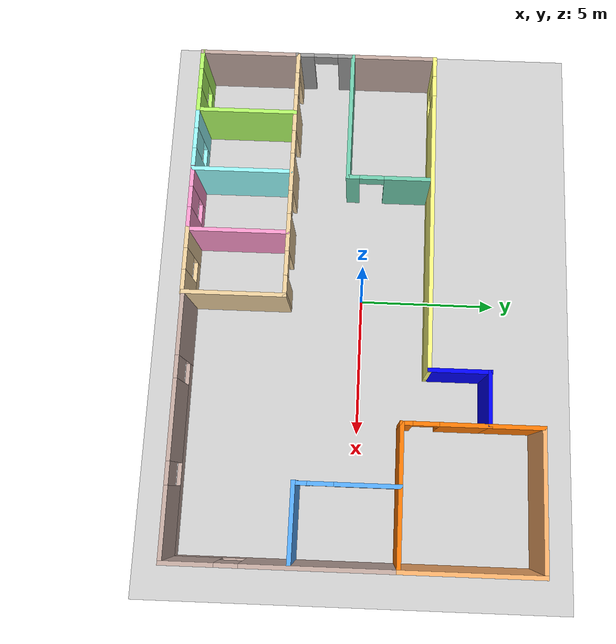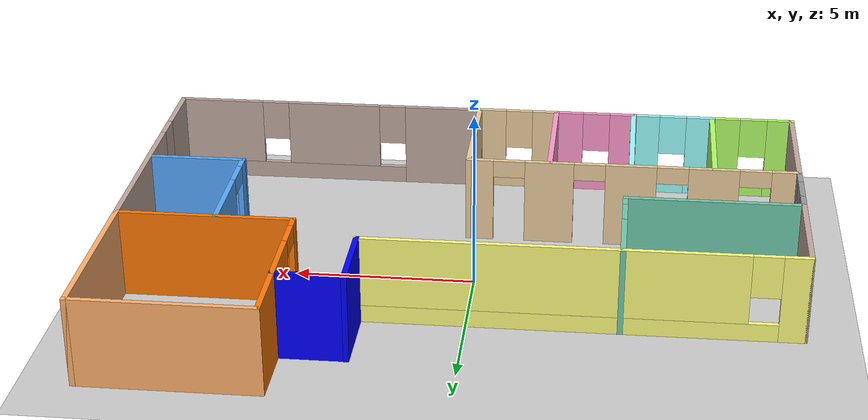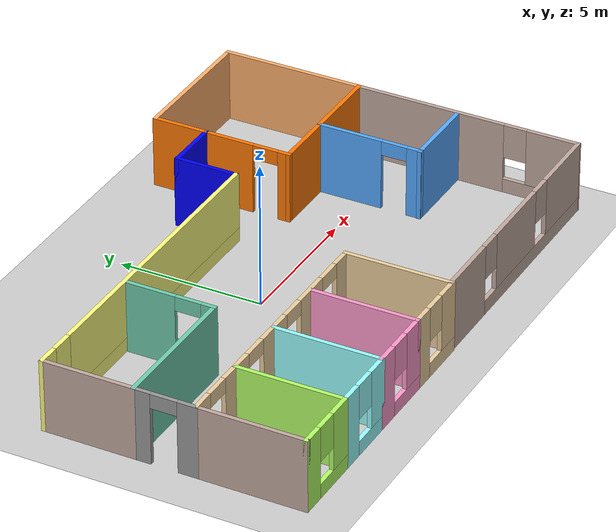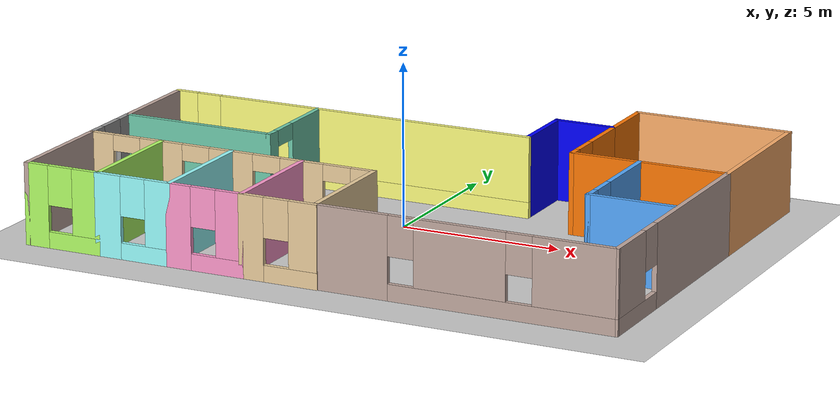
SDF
<sdf version="1.6">
 <world name="default">
  <model name="ground_plane">
   <static>1</static>
   <link name="link">
    <collision name="collision">
     <geometry><plane><normal>0 0 1</normal><size>100 100</size></plane></geometry>
     <surface><friction><ode><mu>100</mu><mu2>50</mu2></ode></friction></surface>
    </collision>
    <visual name="visual">
     <cast_shadows>0</cast_shadows>
     <geometry><plane><normal>0 0 1</normal><size>100 100</size></plane></geometry>
     <material>
      <script><uri>file://media/materials/scripts/gazebo.material</uri><name>Gazebo/Grey</name></script>
     </material>
    </visual>
   </link>
  </model>
  <model name="Building">
   <pose>0.30391 0.642742 0 0 -0 0</pose>
   <link name="Wall_0">
    <collision name="Wall_0_Collision">
     <geometry><box><size>5 0.15 2.5</size></box></geometry>
     <pose>0 0 1.25 0 -0 0</pose>
    </collision>
    <visual name="Wall_0_Visual">
     <pose>0 0 1.25 0 -0 0</pose>
     <geometry><box><size>5 0.15 2.5</size></box></geometry>
     <material>
      <script><uri>file://media/materials/scripts/gazebo.material</uri><name>Gazebo/Grey</name></script>
      <ambient>0.435294 0.796078 0.67451 1</ambient>
     </material>
     <meta><layer>0</layer></meta>
    </visual>
    <pose>-6.85008 -1.3 0 0 -0 0</pose>
   </link>
   <link name="Wall_1">
    <pose>-4.42508 0.25 0 0 -0 1.5708</pose>
    <visual name="Wall_1_Visual_0">
     <pose>-1.37584 0 1.25 0 -0 0</pose>
     <geometry><box><size>0.498315 0.15 2.5</size></box></geometry>
     <material>
      <script><uri>file://media/materials/scripts/gazebo.material</uri><name>Gazebo/Grey</name></script>
      <ambient>0.435294 0.796078 0.67451 1</ambient>
     </material>
     <meta><layer>0</layer></meta>
    </visual>
    <collision name="Wall_1_Collision_0">
     <geometry><box><size>0.498315 0.15 2.5</size></box></geometry>
     <pose>-1.37584 0 1.25 0 -0 0</pose>
    </collision>
    <visual name="Wall_1_Visual_1">
     <pose>0.699158 0 1.25 0 -0 0</pose>
     <geometry><box><size>1.85169 0.15 2.5</size></box></geometry>
     <material>
      <script><uri>file://media/materials/scripts/gazebo.material</uri><name>Gazebo/Grey</name></script>
      <ambient>0.435294 0.796078 0.67451 1</ambient>
     </material>
     <meta><layer>0</layer></meta>
    </visual>
    <collision name="Wall_1_Collision_1">
     <geometry><box><size>1.85169 0.15 2.5</size></box></geometry>
     <pose>0.699158 0 1.25 0 -0 0</pose>
    </collision>
    <visual name="Wall_1_Visual_2">
     <pose>-0.676685 0 2.25 0 -0 0</pose>
     <geometry><box><size>0.9 0.15 0.5</size></box></geometry>
     <material>
      <script><uri>file://media/materials/scripts/gazebo.material</uri><name>Gazebo/Grey</name></script>
      <ambient>0.435294 0.796078 0.67451 1</ambient>
     </material>
     <meta><layer>0</layer></meta>
    </visual>
    <collision name="Wall_1_Collision_2">
     <geometry><box><size>0.9 0.15 0.5</size></box></geometry>
     <pose>-0.676685 0 2.25 0 -0 0</pose>
    </collision>
   </link>
   <link name="Wall_10">
    <pose>-3.40008 -7 0 0 -0 0</pose>
    <visual name="Wall_10_Visual_0">
     <pose>-0.845921 0 1.25 0 -0 0</pose>
     <geometry><box><size>0.808158 0.15 2.5</size></box></geometry>
     <material>
      <script><uri>file://media/materials/scripts/gazebo.material</uri><name>Gazebo/Grey</name></script>
      <ambient>1 0.6 0.8 1</ambient>
     </material>
     <meta><layer>0</layer></meta>
    </visual>
    <collision name="Wall_10_Collision_0">
     <geometry><box><size>0.808158 0.15 2.5</size></box></geometry>
     <pose>-0.845921 0 1.25 0 -0 0</pose>
    </collision>
    <visual name="Wall_10_Visual_1">
     <pose>0.404079 0 0.25 0 -0 0</pose>
     <geometry><box><size>1.69184 0.15 0.5</size></box></geometry>
     <material>
      <script><uri>file://media/materials/scripts/gazebo.material</uri><name>Gazebo/Grey</name></script>
      <ambient>1 0.6 0.8 1</ambient>
     </material>
     <meta><layer>0</layer></meta>
    </visual>
    <collision name="Wall_10_Collision_1">
     <geometry><box><size>1.69184 0.15 0.5</size></box></geometry>
     <pose>0.404079 0 0.25 0 -0 0</pose>
    </collision>
    <visual name="Wall_10_Visual_2">
     <pose>0.804079 0 1.5 0 -0 0</pose>
     <geometry><box><size>0.891842 0.15 2</size></box></geometry>
     <material>
      <script><uri>file://media/materials/scripts/gazebo.material</uri><name>Gazebo/Grey</name></script>
      <ambient>1 0.6 0.8 1</ambient>
     </material>
     <meta><layer>0</layer></meta>
    </visual>
    <collision name="Wall_10_Collision_2">
     <geometry><box><size>0.891842 0.15 2</size></box></geometry>
     <pose>0.804079 0 1.5 0 -0 0</pose>
    </collision>
    <visual name="Wall_10_Visual_3">
     <pose>-0.041842 0 1.9 0 -0 0</pose>
     <geometry><box><size>0.8 0.15 1.2</size></box></geometry>
     <material>
      <script><uri>file://media/materials/scripts/gazebo.material</uri><name>Gazebo/Grey</name></script>
      <ambient>1 0.6 0.8 1</ambient>
     </material>
     <meta><layer>0</layer></meta>
    </visual>
    <collision name="Wall_10_Collision_3">
     <geometry><box><size>0.8 0.15 1.2</size></box></geometry>
     <pose>-0.041842 0 1.9 0 -0 0</pose>
    </collision>
   </link>
   <link name="Wall_11">
    <pose>-1.05008 -7 0 0 -0 0</pose>
    <visual name="Wall_11_Visual_0">
     <pose>-0.851227 0 1.25 0 -0 0</pose>
     <geometry><box><size>0.797546 0.15 2.5</size></box></geometry>
     <material>
      <script><uri>file://media/materials/scripts/gazebo.material</uri><name>Gazebo/Grey</name></script>
      <ambient>0.921569 0.807843 0.615686 1</ambient>
     </material>
     <meta><layer>0</layer></meta>
    </visual>
    <collision name="Wall_11_Collision_0">
     <geometry><box><size>0.797546 0.15 2.5</size></box></geometry>
     <pose>-0.851227 0 1.25 0 -0 0</pose>
    </collision>
    <visual name="Wall_11_Visual_1">
     <pose>0.398773 0 0.25 0 -0 0</pose>
     <geometry><box><size>1.70245 0.15 0.5</size></box></geometry>
     <material>
      <script><uri>file://media/materials/scripts/gazebo.material</uri><name>Gazebo/Grey</name></script>
      <ambient>0.921569 0.807843 0.615686 1</ambient>
     </material>
     <meta><layer>0</layer></meta>
    </visual>
    <collision name="Wall_11_Collision_1">
     <geometry><box><size>1.70245 0.15 0.5</size></box></geometry>
     <pose>0.398773 0 0.25 0 -0 0</pose>
    </collision>
    <visual name="Wall_11_Visual_2">
     <pose>0.798773 0 1.5 0 -0 0</pose>
     <geometry><box><size>0.902454 0.15 2</size></box></geometry>
     <material>
      <script><uri>file://media/materials/scripts/gazebo.material</uri><name>Gazebo/Grey</name></script>
      <ambient>0.921569 0.807843 0.615686 1</ambient>
     </material>
     <meta><layer>0</layer></meta>
    </visual>
    <collision name="Wall_11_Collision_2">
     <geometry><box><size>0.902454 0.15 2</size></box></geometry>
     <pose>0.798773 0 1.5 0 -0 0</pose>
    </collision>
    <visual name="Wall_11_Visual_3">
     <pose>-0.052454 0 1.9 0 -0 0</pose>
     <geometry><box><size>0.8 0.15 1.2</size></box></geometry>
     <material>
      <script><uri>file://media/materials/scripts/gazebo.material</uri><name>Gazebo/Grey</name></script>
      <ambient>0.921569 0.807843 0.615686 1</ambient>
     </material>
     <meta><layer>0</layer></meta>
    </visual>
    <collision name="Wall_11_Collision_3">
     <geometry><box><size>0.8 0.15 1.2</size></box></geometry>
     <pose>-0.052454 0 1.9 0 -0 0</pose>
    </collision>
   </link>
   <link name="Wall_13">
    <collision name="Wall_13_Collision">
     <geometry><box><size>3.75 0.15 2.5</size></box></geometry>
     <pose>0 0 1.25 0 -0 0</pose>
    </collision>
    <visual name="Wall_13_Visual">
     <pose>0 0 1.25 0 -0 0</pose>
     <geometry><box><size>3.75 0.15 2.5</size></box></geometry>
     <material>
      <script><uri>file://media/materials/scripts/gazebo.material</uri><name>Gazebo/Grey</name></script>
      <ambient>0.7 1 0.4 1</ambient>
     </material>
     <meta><layer>0</layer></meta>
    </visual>
    <pose>-6.90893 -5.18287 0 0 0 -1.5708</pose>
   </link>
   <link name="Wall_15">
    <collision name="Wall_15_Collision">
     <geometry><box><size>3.75 0.15 2.5</size></box></geometry>
     <pose>0 0 1.25 0 -0 0</pose>
    </collision>
    <visual name="Wall_15_Visual">
     <pose>0 0 1.25 0 -0 0</pose>
     <geometry><box><size>3.75 0.15 2.5</size></box></geometry>
     <material>
      <script><uri>file://media/materials/scripts/gazebo.material</uri><name>Gazebo/Grey</name></script>
      <ambient>0.6 1 1 1</ambient>
     </material>
     <meta><layer>0</layer></meta>
    </visual>
    <pose>-4.55349 -5.19817 0 0 0 -1.5708</pose>
   </link>
   <link name="Wall_20">
    <collision name="Wall_20_Collision">
     <geometry><box><size>3.75 0.15 2.5</size></box></geometry>
     <pose>0 0 1.25 0 -0 0</pose>
    </collision>
    <visual name="Wall_20_Visual">
     <pose>0 0 1.25 0 -0 0</pose>
     <geometry><box><size>3.75 0.15 2.5</size></box></geometry>
     <material>
      <script><uri>file://media/materials/scripts/gazebo.material</uri><name>Gazebo/Grey</name></script>
      <ambient>0.921569 0.807843 0.615686 1</ambient>
     </material>
     <meta><layer>0</layer></meta>
    </visual>
    <pose>0.105511 -5.16941 0 0 0 -1.5708</pose>
   </link>
   <link name="Wall_22">
    <pose>-4.56949 -3.36941 0 0 -0 3.14159</pose>
    <visual name="Wall_22_Visual_0">
     <pose>-4.35107 0 1.25 0 -0 0</pose>
     <geometry><box><size>0.797866 0.15 2.5</size></box></geometry>
     <material>
      <script><uri>file://media/materials/scripts/gazebo.material</uri><name>Gazebo/Grey</name></script>
      <ambient>0.921569 0.807843 0.615686 1</ambient>
     </material>
     <meta><layer>0</layer></meta>
    </visual>
    <collision name="Wall_22_Collision_0">
     <geometry><box><size>0.797866 0.15 2.5</size></box></geometry>
     <pose>-4.35107 0 1.25 0 -0 0</pose>
    </collision>
    <visual name="Wall_22_Visual_1">
     <pose>-2.35003 0 1.25 0 -0 0</pose>
     <geometry><box><size>1.40421 0.15 2.5</size></box></geometry>
     <material>
      <script><uri>file://media/materials/scripts/gazebo.material</uri><name>Gazebo/Grey</name></script>
      <ambient>0.921569 0.807843 0.615686 1</ambient>
     </material>
     <meta><layer>0</layer></meta>
    </visual>
    <collision name="Wall_22_Collision_1">
     <geometry><box><size>1.40421 0.15 2.5</size></box></geometry>
     <pose>-2.35003 0 1.25 0 -0 0</pose>
    </collision>
    <visual name="Wall_22_Visual_2">
     <pose>-0.019437 0 1.25 0 -0 0</pose>
     <geometry><box><size>1.45698 0.15 2.5</size></box></geometry>
     <material>
      <script><uri>file://media/materials/scripts/gazebo.material</uri><name>Gazebo/Grey</name></script>
      <ambient>0.921569 0.807843 0.615686 1</ambient>
     </material>
     <meta><layer>0</layer></meta>
    </visual>
    <collision name="Wall_22_Collision_2">
     <geometry><box><size>1.45698 0.15 2.5</size></box></geometry>
     <pose>-0.019437 0 1.25 0 -0 0</pose>
    </collision>
    <visual name="Wall_22_Visual_3">
     <pose>2.32875 0 1.25 0 -0 0</pose>
     <geometry><box><size>1.43939 0.15 2.5</size></box></geometry>
     <material>
      <script><uri>file://media/materials/scripts/gazebo.material</uri><name>Gazebo/Grey</name></script>
      <ambient>0.921569 0.807843 0.615686 1</ambient>
     </material>
     <meta><layer>0</layer></meta>
    </visual>
    <collision name="Wall_22_Collision_3">
     <geometry><box><size>1.43939 0.15 2.5</size></box></geometry>
     <pose>2.32875 0 1.25 0 -0 0</pose>
    </collision>
    <visual name="Wall_22_Visual_4">
     <pose>4.34922 0 1.25 0 -0 0</pose>
     <geometry><box><size>0.801561 0.15 2.5</size></box></geometry>
     <material>
      <script><uri>file://media/materials/scripts/gazebo.material</uri><name>Gazebo/Grey</name></script>
      <ambient>0.921569 0.807843 0.615686 1</ambient>
     </material>
     <meta><layer>0</layer></meta>
    </visual>
    <collision name="Wall_22_Collision_4">
     <geometry><box><size>0.801561 0.15 2.5</size></box></geometry>
     <pose>4.34922 0 1.25 0 -0 0</pose>
    </collision>
    <visual name="Wall_22_Visual_5">
     <pose>-3.50213 0 2.25 0 -0 0</pose>
     <geometry><box><size>0.9 0.15 0.5</size></box></geometry>
     <material>
      <script><uri>file://media/materials/scripts/gazebo.material</uri><name>Gazebo/Grey</name></script>
      <ambient>0.921569 0.807843 0.615686 1</ambient>
     </material>
     <meta><layer>0</layer></meta>
    </visual>
    <collision name="Wall_22_Collision_5">
     <geometry><box><size>0.9 0.15 0.5</size></box></geometry>
     <pose>-3.50213 0 2.25 0 -0 0</pose>
    </collision>
    <visual name="Wall_22_Visual_6">
     <pose>-1.19792 0 2.25 0 -0 0</pose>
     <geometry><box><size>0.9 0.15 0.5</size></box></geometry>
     <material>
      <script><uri>file://media/materials/scripts/gazebo.material</uri><name>Gazebo/Grey</name></script>
      <ambient>0.921569 0.807843 0.615686 1</ambient>
     </material>
     <meta><layer>0</layer></meta>
    </visual>
    <collision name="Wall_22_Collision_6">
     <geometry><box><size>0.9 0.15 0.5</size></box></geometry>
     <pose>-1.19792 0 2.25 0 -0 0</pose>
    </collision>
    <visual name="Wall_22_Visual_7">
     <pose>1.15905 0 2.25 0 -0 0</pose>
     <geometry><box><size>0.9 0.15 0.5</size></box></geometry>
     <material>
      <script><uri>file://media/materials/scripts/gazebo.material</uri><name>Gazebo/Grey</name></script>
      <ambient>0.921569 0.807843 0.615686 1</ambient>
     </material>
     <meta><layer>0</layer></meta>
    </visual>
    <collision name="Wall_22_Collision_7">
     <geometry><box><size>0.9 0.15 0.5</size></box></geometry>
     <pose>1.15905 0 2.25 0 -0 0</pose>
    </collision>
    <visual name="Wall_22_Visual_8">
     <pose>3.49844 0 2.25 0 -0 0</pose>
     <geometry><box><size>0.9 0.15 0.5</size></box></geometry>
     <material>
      <script><uri>file://media/materials/scripts/gazebo.material</uri><name>Gazebo/Grey</name></script>
      <ambient>0.921569 0.807843 0.615686 1</ambient>
     </material>
     <meta><layer>0</layer></meta>
    </visual>
    <collision name="Wall_22_Collision_8">
     <geometry><box><size>0.9 0.15 0.5</size></box></geometry>
     <pose>3.49844 0 2.25 0 -0 0</pose>
    </collision>
   </link>
   <link name="Wall_24">
    <collision name="Wall_24_Collision">
     <geometry><box><size>3.75 0.15 2.5</size></box></geometry>
     <pose>0 0 1.25 0 -0 0</pose>
    </collision>
    <visual name="Wall_24_Visual">
     <pose>0 0 1.25 0 -0 0</pose>
     <geometry><box><size>3.75 0.15 2.5</size></box></geometry>
     <material>
      <script><uri>file://media/materials/scripts/gazebo.material</uri><name>Gazebo/Grey</name></script>
      <ambient>1 0.6 0.8 1</ambient>
     </material>
     <meta><layer>0</layer></meta>
    </visual>
    <pose>-2.22508 -5.2 0 0 -0 1.5708</pose>
   </link>
   <link name="Wall_27">
    <pose>-3.35008 1.8 0 0 -0 0</pose>
    <visual name="Wall_27_Visual_0">
     <pose>-5.61169 0 1.25 0 -0 0</pose>
     <geometry><box><size>0.776615 0.15 2.5</size></box></geometry>
     <material>
      <script><uri>file://media/materials/scripts/gazebo.material</uri><name>Gazebo/Grey</name></script>
      <ambient>1 1 0.498039 1</ambient>
     </material>
     <meta><layer>0</layer></meta>
    </visual>
    <collision name="Wall_27_Collision_0">
     <geometry><box><size>0.776615 0.15 2.5</size></box></geometry>
     <pose>-5.61169 0 1.25 0 -0 0</pose>
    </collision>
    <visual name="Wall_27_Visual_1">
     <pose>0.388307 0 0.25 0 -0 0</pose>
     <geometry><box><size>11.2234 0.15 0.5</size></box></geometry>
     <material>
      <script><uri>file://media/materials/scripts/gazebo.material</uri><name>Gazebo/Grey</name></script>
      <ambient>1 1 0.498039 1</ambient>
     </material>
     <meta><layer>0</layer></meta>
    </visual>
    <collision name="Wall_27_Collision_1">
     <geometry><box><size>11.2234 0.15 0.5</size></box></geometry>
     <pose>0.388307 0 0.25 0 -0 0</pose>
    </collision>
    <visual name="Wall_27_Visual_2">
     <pose>0.788307 0 1.5 0 -0 0</pose>
     <geometry><box><size>10.4234 0.15 2</size></box></geometry>
     <material>
      <script><uri>file://media/materials/scripts/gazebo.material</uri><name>Gazebo/Grey</name></script>
      <ambient>1 1 0.498039 1</ambient>
     </material>
     <meta><layer>0</layer></meta>
    </visual>
    <collision name="Wall_27_Collision_2">
     <geometry><box><size>10.4234 0.15 2</size></box></geometry>
     <pose>0.788307 0 1.5 0 -0 0</pose>
    </collision>
    <visual name="Wall_27_Visual_3">
     <pose>-4.82339 0 1.9 0 -0 0</pose>
     <geometry><box><size>0.8 0.15 1.2</size></box></geometry>
     <material>
      <script><uri>file://media/materials/scripts/gazebo.material</uri><name>Gazebo/Grey</name></script>
      <ambient>1 1 0.498039 1</ambient>
     </material>
     <meta><layer>0</layer></meta>
    </visual>
    <collision name="Wall_27_Collision_3">
     <geometry><box><size>0.8 0.15 1.2</size></box></geometry>
     <pose>-4.82339 0 1.9 0 -0 0</pose>
    </collision>
   </link>
   <link name="Wall_29">
    <pose>2.57492 2.85 0 0 -0 1.5708</pose>
    <visual name="Wall_29_Visual">
     <pose>0.01253 0 1.25 0 -0 0</pose>
     <geometry><box><size>2.25 0.15 2.5</size></box></geometry>
     <material>
      <script><uri>file://media/materials/scripts/gazebo.material</uri><name>Gazebo/Grey</name></script>
      <ambient>0 0 1 1</ambient>
     </material>
     <meta><layer>0</layer></meta>
    </visual>
    <collision name="Wall_29_Collision">
     <geometry><box><size>2.25 0.15 2.5</size></box></geometry>
     <pose>0.01253 0 1.25 0 -0 0</pose>
    </collision>
   </link>
   <link name="Wall_3">
    <collision name="Wall_3_Collision">
     <geometry><box><size>3.25 0.15 2.5</size></box></geometry>
     <pose>0 0 1.25 0 -0 0</pose>
    </collision>
    <visual name="Wall_3_Visual">
     <pose>0 0 1.25 0 -0 0</pose>
     <geometry><box><size>3.25 0.15 2.5</size></box></geometry>
     <material>
      <script><uri>file://media/materials/scripts/gazebo.material</uri><name>Gazebo/Grey</name></script>
      <ambient>0.760784 0.662745 0.627451 1</ambient>
     </material>
     <meta><layer>0</layer></meta>
    </visual>
    <pose>-9.27508 0.25 0 0 0 -1.5708</pose>
   </link>
   <link name="Wall_39">
    <collision name="Wall_39_Collision">
     <geometry><box><size>2 0.15 2.5</size></box></geometry>
     <pose>0 0 1.25 0 -0 0</pose>
    </collision>
    <visual name="Wall_39_Visual">
     <pose>0 0 1.25 0 -0 0</pose>
     <geometry><box><size>2 0.15 2.5</size></box></geometry>
     <material>
      <script><uri>file://media/materials/scripts/gazebo.material</uri><name>Gazebo/Grey</name></script>
      <ambient>0 0 1 1</ambient>
     </material>
     <meta><layer>0</layer></meta>
    </visual>
    <pose>3.49992 3.9 0 0 -0 0</pose>
   </link>
   <link name="Wall_40">
    <collision name="Wall_40_Collision">
     <geometry><box><size>2 0.15 2.5</size></box></geometry>
     <pose>0 0 1.25 0 -0 0</pose>
    </collision>
    <visual name="Wall_40_Visual">
     <pose>0 0 1.25 0 -0 0</pose>
     <geometry><box><size>2 0.15 2.5</size></box></geometry>
     <material>
      <script><uri>file://media/materials/scripts/gazebo.material</uri><name>Gazebo/Grey</name></script>
      <ambient>0.996078 0.47451 0.0196078 1</ambient>
     </material>
     <meta><layer>0</layer></meta>
    </visual>
    <pose>4.42492 4.825 0 0 -0 1.5708</pose>
   </link>
   <link name="Wall_42">
    <collision name="Wall_42_Collision">
     <geometry><box><size>5 0.15 2.5</size></box></geometry>
     <pose>0 0 1.25 0 -0 0</pose>
    </collision>
    <visual name="Wall_42_Visual">
     <pose>0 0 1.25 0 -0 0</pose>
     <geometry><box><size>5 0.15 2.5</size></box></geometry>
     <material>
      <script><uri>file://media/materials/scripts/gazebo.material</uri><name>Gazebo/Grey</name></script>
      <ambient>1 0.69 0.42 1</ambient>
     </material>
     <meta><layer>0</layer></meta>
    </visual>
    <pose>6.84992 5.75 0 0 -0 0</pose>
   </link>
   <link name="Wall_47">
    <collision name="Wall_47_Collision">
     <geometry><box><size>5 0.15 2.5</size></box></geometry>
     <pose>0 0 1.25 0 -0 0</pose>
    </collision>
    <visual name="Wall_47_Visual">
     <pose>0 0 1.25 0 -0 0</pose>
     <geometry><box><size>5 0.15 2.5</size></box></geometry>
     <material>
      <script><uri>file://media/materials/scripts/gazebo.material</uri><name>Gazebo/Grey</name></script>
      <ambient>1 0.69 0.42 1</ambient>
     </material>
     <meta><layer>0</layer></meta>
    </visual>
    <pose>9.27492 3.325 0 0 0 -1.5708</pose>
   </link>
   <link name="Wall_48">
    <collision name="Wall_48_Collision">
     <geometry><box><size>5 0.15 2.5</size></box></geometry>
     <pose>0 0 1.25 0 -0 0</pose>
    </collision>
    <visual name="Wall_48_Visual">
     <pose>0 0 1.25 0 -0 0</pose>
     <geometry><box><size>5 0.15 2.5</size></box></geometry>
     <material>
      <script><uri>file://media/materials/scripts/gazebo.material</uri><name>Gazebo/Grey</name></script>
      <ambient>0.996078 0.47451 0.0196078 1</ambient>
     </material>
     <meta><layer>0</layer></meta>
    </visual>
    <pose>6.84992 0.9 0 0 -0 3.14159</pose>
   </link>
   <link name="Wall_5">
    <pose>-9.27508 -2.35 0 0 0 -1.5708</pose>
    <visual name="Wall_5_Visual_0">
     <pose>-0.799331 0 1.25 0 -0 0</pose>
     <geometry><box><size>0.651337 0.15 2.5</size></box></geometry>
     <material>
      <script><uri>file://media/materials/scripts/gazebo.material</uri><name>Gazebo/Grey</name></script>
      <ambient>1 1 1 1</ambient>
     </material>
     <meta><layer>0</layer></meta>
    </visual>
    <collision name="Wall_5_Collision_0">
     <geometry><box><size>0.651337 0.15 2.5</size></box></geometry>
     <pose>-0.799331 0 1.25 0 -0 0</pose>
    </collision>
    <visual name="Wall_5_Visual_1">
     <pose>0.775669 0 1.25 0 -0 0</pose>
     <geometry><box><size>0.698663 0.15 2.5</size></box></geometry>
     <material>
      <script><uri>file://media/materials/scripts/gazebo.material</uri><name>Gazebo/Grey</name></script>
      <ambient>1 1 1 1</ambient>
     </material>
     <meta><layer>0</layer></meta>
    </visual>
    <collision name="Wall_5_Collision_1">
     <geometry><box><size>0.698663 0.15 2.5</size></box></geometry>
     <pose>0.775669 0 1.25 0 -0 0</pose>
    </collision>
    <visual name="Wall_5_Visual_2">
     <pose>-0.023663 0 2.25 0 -0 0</pose>
     <geometry><box><size>0.9 0.15 0.5</size></box></geometry>
     <material>
      <script><uri>file://media/materials/scripts/gazebo.material</uri><name>Gazebo/Grey</name></script>
      <ambient>1 1 1 1</ambient>
     </material>
     <meta><layer>0</layer></meta>
    </visual>
    <collision name="Wall_5_Collision_2">
     <geometry><box><size>0.9 0.15 0.5</size></box></geometry>
     <pose>-0.023663 0 2.25 0 -0 0</pose>
    </collision>
   </link>
   <link name="Wall_50">
    <pose>4.42492 2.4 0 0 -0 1.5708</pose>
    <visual name="Wall_50_Visual_0">
     <pose>-1.35289 0 1.25 0 -0 0</pose>
     <geometry><box><size>0.44422 0.15 2.5</size></box></geometry>
     <material>
      <script><uri>file://media/materials/scripts/gazebo.material</uri><name>Gazebo/Grey</name></script>
      <ambient>0.996078 0.47451 0.0196078 1</ambient>
     </material>
     <meta><layer>0</layer></meta>
    </visual>
    <collision name="Wall_50_Collision_0">
     <geometry><box><size>0.44422 0.15 2.5</size></box></geometry>
     <pose>-1.35289 0 1.25 0 -0 0</pose>
    </collision>
    <visual name="Wall_50_Visual_1">
     <pose>0.67211 0 1.25 0 -0 0</pose>
     <geometry><box><size>1.80578 0.15 2.5</size></box></geometry>
     <material>
      <script><uri>file://media/materials/scripts/gazebo.material</uri><name>Gazebo/Grey</name></script>
      <ambient>0.996078 0.47451 0.0196078 1</ambient>
     </material>
     <meta><layer>0</layer></meta>
    </visual>
    <collision name="Wall_50_Collision_1">
     <geometry><box><size>1.80578 0.15 2.5</size></box></geometry>
     <pose>0.67211 0 1.25 0 -0 0</pose>
    </collision>
    <visual name="Wall_50_Visual_2">
     <pose>-0.68078 0 2.25 0 -0 0</pose>
     <geometry><box><size>0.9 0.15 0.5</size></box></geometry>
     <material>
      <script><uri>file://media/materials/scripts/gazebo.material</uri><name>Gazebo/Grey</name></script>
      <ambient>0.996078 0.47451 0.0196078 1</ambient>
     </material>
     <meta><layer>0</layer></meta>
    </visual>
    <collision name="Wall_50_Collision_2">
     <geometry><box><size>0.9 0.15 0.5</size></box></geometry>
     <pose>-0.68078 0 2.25 0 -0 0</pose>
    </collision>
   </link>
   <link name="Wall_52">
    <pose>9.27492 -3.025 0 0 0 -1.5708</pose>
    <visual name="Wall_52_Visual_0">
     <pose>-1.32687 0 1.25 0 -0 0</pose>
     <geometry><box><size>5.34626 0.15 2.5</size></box></geometry>
     <material>
      <script><uri>file://media/materials/scripts/gazebo.material</uri><name>Gazebo/Grey</name></script>
      <ambient>0.760784 0.662745 0.627451 1</ambient>
     </material>
     <meta><layer>0</layer></meta>
    </visual>
    <collision name="Wall_52_Collision_0">
     <geometry><box><size>5.34626 0.15 2.5</size></box></geometry>
     <pose>-1.32687 0 1.25 0 -0 0</pose>
    </collision>
    <visual name="Wall_52_Visual_1">
     <pose>2.67313 0 0.25 0 -0 0</pose>
     <geometry><box><size>2.65374 0.15 0.5</size></box></geometry>
     <material>
      <script><uri>file://media/materials/scripts/gazebo.material</uri><name>Gazebo/Grey</name></script>
      <ambient>0.760784 0.662745 0.627451 1</ambient>
     </material>
     <meta><layer>0</layer></meta>
    </visual>
    <collision name="Wall_52_Collision_1">
     <geometry><box><size>2.65374 0.15 0.5</size></box></geometry>
     <pose>2.67313 0 0.25 0 -0 0</pose>
    </collision>
    <visual name="Wall_52_Visual_2">
     <pose>3.07313 0 1.5 0 -0 0</pose>
     <geometry><box><size>1.85374 0.15 2</size></box></geometry>
     <material>
      <script><uri>file://media/materials/scripts/gazebo.material</uri><name>Gazebo/Grey</name></script>
      <ambient>0.760784 0.662745 0.627451 1</ambient>
     </material>
     <meta><layer>0</layer></meta>
    </visual>
    <collision name="Wall_52_Collision_2">
     <geometry><box><size>1.85374 0.15 2</size></box></geometry>
     <pose>3.07313 0 1.5 0 -0 0</pose>
    </collision>
    <visual name="Wall_52_Visual_3">
     <pose>1.74626 0 1.9 0 -0 0</pose>
     <geometry><box><size>0.8 0.15 1.2</size></box></geometry>
     <material>
      <script><uri>file://media/materials/scripts/gazebo.material</uri><name>Gazebo/Grey</name></script>
      <ambient>0.760784 0.662745 0.627451 1</ambient>
     </material>
     <meta><layer>0</layer></meta>
    </visual>
    <collision name="Wall_52_Collision_3">
     <geometry><box><size>0.8 0.15 1.2</size></box></geometry>
     <pose>1.74626 0 1.9 0 -0 0</pose>
    </collision>
   </link>
   <link name="Wall_56">
    <pose>4.69022 -6.9597 0 0 -0 0.002117</pose>
    <visual name="Wall_56_Visual_0">
     <pose>-3.48265 0 1.25 0 -0 0</pose>
     <geometry><box><size>2.35413 0.15 2.5</size></box></geometry>
     <material>
      <script><uri>file://media/materials/scripts/gazebo.material</uri><name>Gazebo/Grey</name></script>
      <ambient>0.760784 0.662745 0.627451 1</ambient>
     </material>
     <meta><layer>0</layer></meta>
    </visual>
    <collision name="Wall_56_Collision_0">
     <geometry><box><size>2.35413 0.15 2.5</size></box></geometry>
     <pose>-3.48265 0 1.25 0 -0 0</pose>
    </collision>
    <visual name="Wall_56_Visual_1">
     <pose>1.17706 0 0.25 0 -0 0</pose>
     <geometry><box><size>6.9653 0.15 0.5</size></box></geometry>
     <material>
      <script><uri>file://media/materials/scripts/gazebo.material</uri><name>Gazebo/Grey</name></script>
      <ambient>0.760784 0.662745 0.627451 1</ambient>
     </material>
     <meta><layer>0</layer></meta>
    </visual>
    <collision name="Wall_56_Collision_1">
     <geometry><box><size>6.9653 0.15 0.5</size></box></geometry>
     <pose>1.17706 0 0.25 0 -0 0</pose>
    </collision>
    <visual name="Wall_56_Visual_2">
     <pose>-0.102624 0 1.5 0 -0 0</pose>
     <geometry><box><size>2.80593 0.15 2</size></box></geometry>
     <material>
      <script><uri>file://media/materials/scripts/gazebo.material</uri><name>Gazebo/Grey</name></script>
      <ambient>0.760784 0.662745 0.627451 1</ambient>
     </material>
     <meta><layer>0</layer></meta>
    </visual>
    <collision name="Wall_56_Collision_2">
     <geometry><box><size>2.80593 0.15 2</size></box></geometry>
     <pose>-0.102624 0 1.5 0 -0 0</pose>
    </collision>
    <visual name="Wall_56_Visual_3">
     <pose>3.38003 0 1.5 0 -0 0</pose>
     <geometry><box><size>2.55938 0.15 2</size></box></geometry>
     <material>
      <script><uri>file://media/materials/scripts/gazebo.material</uri><name>Gazebo/Grey</name></script>
      <ambient>0.760784 0.662745 0.627451 1</ambient>
     </material>
     <meta><layer>0</layer></meta>
    </visual>
    <collision name="Wall_56_Collision_3">
     <geometry><box><size>2.55938 0.15 2</size></box></geometry>
     <pose>3.38003 0 1.5 0 -0 0</pose>
    </collision>
    <visual name="Wall_56_Visual_4">
     <pose>-1.90559 0 1.9 0 -0 0</pose>
     <geometry><box><size>0.8 0.15 1.2</size></box></geometry>
     <material>
      <script><uri>file://media/materials/scripts/gazebo.material</uri><name>Gazebo/Grey</name></script>
      <ambient>0.760784 0.662745 0.627451 1</ambient>
     </material>
     <meta><layer>0</layer></meta>
    </visual>
    <collision name="Wall_56_Collision_4">
     <geometry><box><size>0.8 0.15 1.2</size></box></geometry>
     <pose>-1.90559 0 1.9 0 -0 0</pose>
    </collision>
    <visual name="Wall_56_Visual_5">
     <pose>1.70034 0 1.9 0 -0 0</pose>
     <geometry><box><size>0.8 0.15 1.2</size></box></geometry>
     <material>
      <script><uri>file://media/materials/scripts/gazebo.material</uri><name>Gazebo/Grey</name></script>
      <ambient>0.760784 0.662745 0.627451 1</ambient>
     </material>
     <meta><layer>0</layer></meta>
    </visual>
    <collision name="Wall_56_Collision_5">
     <geometry><box><size>0.8 0.15 1.2</size></box></geometry>
     <pose>1.70034 0 1.9 0 -0 0</pose>
    </collision>
   </link>
   <link name="Wall_58">
    <pose>6.54885 -0.907481 0 0 0 -1.5708</pose>
    <visual name="Wall_58_Visual_0">
     <pose>-0.716912 0 1.25 0 -0 0</pose>
     <geometry><box><size>2.31617 0.15 2.5</size></box></geometry>
     <material>
      <script><uri>file://media/materials/scripts/gazebo.material</uri><name>Gazebo/Grey</name></script>
      <ambient>0.333333 0.666667 1 1</ambient>
     </material>
     <meta><layer>0</layer></meta>
    </visual>
    <collision name="Wall_58_Collision_0">
     <geometry><box><size>2.31617 0.15 2.5</size></box></geometry>
     <pose>-0.716912 0 1.25 0 -0 0</pose>
    </collision>
    <visual name="Wall_58_Visual_1">
     <pose>1.60809 0 1.25 0 -0 0</pose>
     <geometry><box><size>0.533825 0.15 2.5</size></box></geometry>
     <material>
      <script><uri>file://media/materials/scripts/gazebo.material</uri><name>Gazebo/Grey</name></script>
      <ambient>0.333333 0.666667 1 1</ambient>
     </material>
     <meta><layer>0</layer></meta>
    </visual>
    <collision name="Wall_58_Collision_1">
     <geometry><box><size>0.533825 0.15 2.5</size></box></geometry>
     <pose>1.60809 0 1.25 0 -0 0</pose>
    </collision>
    <visual name="Wall_58_Visual_2">
     <pose>0.891175 0 2.25 0 -0 0</pose>
     <geometry><box><size>0.9 0.15 0.5</size></box></geometry>
     <material>
      <script><uri>file://media/materials/scripts/gazebo.material</uri><name>Gazebo/Grey</name></script>
      <ambient>0.333333 0.666667 1 1</ambient>
     </material>
     <meta><layer>0</layer></meta>
    </visual>
    <collision name="Wall_58_Collision_2">
     <geometry><box><size>0.9 0.15 0.5</size></box></geometry>
     <pose>0.891175 0 2.25 0 -0 0</pose>
    </collision>
   </link>
   <link name="Wall_59">
    <collision name="Wall_59_Collision">
     <geometry><box><size>2.75 0.15 2.5</size></box></geometry>
     <pose>0 0 1.25 0 -0 0</pose>
    </collision>
    <visual name="Wall_59_Visual">
     <pose>0 0 1.25 0 -0 0</pose>
     <geometry><box><size>2.75 0.15 2.5</size></box></geometry>
     <material>
      <script><uri>file://media/materials/scripts/gazebo.material</uri><name>Gazebo/Grey</name></script>
      <ambient>0.333333 0.666667 1 1</ambient>
     </material>
     <meta><layer>0</layer></meta>
    </visual>
    <pose>7.83126 -2.70748 0 0 -0 0</pose>
   </link>
   <link name="Wall_6">
    <collision name="Wall_6_Collision">
     <geometry><box><size>3.75 0.15 2.5</size></box></geometry>
     <pose>0 0 1.25 0 -0 0</pose>
    </collision>
    <visual name="Wall_6_Visual">
     <pose>0 0 1.25 0 -0 0</pose>
     <geometry><box><size>3.75 0.15 2.5</size></box></geometry>
     <material>
      <script><uri>file://media/materials/scripts/gazebo.material</uri><name>Gazebo/Grey</name></script>
      <ambient>0.760784 0.662745 0.627451 1</ambient>
     </material>
     <meta><layer>0</layer></meta>
    </visual>
    <pose>-9.27508 -5.2 0 0 0 -1.5708</pose>
   </link>
   <link name="Wall_8">
    <pose>-8.10008 -7 0 0 -0 0</pose>
    <visual name="Wall_8_Visual_0">
     <pose>-0.852898 0 1.25 0 -0 0</pose>
     <geometry><box><size>0.794204 0.15 2.5</size></box></geometry>
     <material>
      <script><uri>file://media/materials/scripts/gazebo.material</uri><name>Gazebo/Grey</name></script>
      <ambient>0.7 1 0.4 1</ambient>
     </material>
     <meta><layer>0</layer></meta>
    </visual>
    <collision name="Wall_8_Collision_0">
     <geometry><box><size>0.794204 0.15 2.5</size></box></geometry>
     <pose>-0.852898 0 1.25 0 -0 0</pose>
    </collision>
    <visual name="Wall_8_Visual_1">
     <pose>0.397102 0 0.25 0 -0 0</pose>
     <geometry><box><size>1.7058 0.15 0.5</size></box></geometry>
     <material>
      <script><uri>file://media/materials/scripts/gazebo.material</uri><name>Gazebo/Grey</name></script>
      <ambient>0.7 1 0.4 1</ambient>
     </material>
     <meta><layer>0</layer></meta>
    </visual>
    <collision name="Wall_8_Collision_1">
     <geometry><box><size>1.7058 0.15 0.5</size></box></geometry>
     <pose>0.397102 0 0.25 0 -0 0</pose>
    </collision>
    <visual name="Wall_8_Visual_2">
     <pose>0.797102 0 1.5 0 -0 0</pose>
     <geometry><box><size>0.905796 0.15 2</size></box></geometry>
     <material>
      <script><uri>file://media/materials/scripts/gazebo.material</uri><name>Gazebo/Grey</name></script>
      <ambient>0.7 1 0.4 1</ambient>
     </material>
     <meta><layer>0</layer></meta>
    </visual>
    <collision name="Wall_8_Collision_2">
     <geometry><box><size>0.905796 0.15 2</size></box></geometry>
     <pose>0.797102 0 1.5 0 -0 0</pose>
    </collision>
    <visual name="Wall_8_Visual_3">
     <pose>-0.055796 0 1.9 0 -0 0</pose>
     <geometry><box><size>0.8 0.15 1.2</size></box></geometry>
     <material>
      <script><uri>file://media/materials/scripts/gazebo.material</uri><name>Gazebo/Grey</name></script>
      <ambient>0.7 1 0.4 1</ambient>
     </material>
     <meta><layer>0</layer></meta>
    </visual>
    <collision name="Wall_8_Collision_3">
     <geometry><box><size>0.8 0.15 1.2</size></box></geometry>
     <pose>-0.055796 0 1.9 0 -0 0</pose>
    </collision>
   </link>
   <link name="Wall_9">
    <pose>-5.75008 -7 0 0 -0 0</pose>
    <visual name="Wall_9_Visual_0">
     <pose>-0.823025 0 1.25 0 -0 0</pose>
     <geometry><box><size>0.853949 0.15 2.5</size></box></geometry>
     <material>
      <script><uri>file://media/materials/scripts/gazebo.material</uri><name>Gazebo/Grey</name></script>
      <ambient>0.6 1 1 1</ambient>
     </material>
     <meta><layer>0</layer></meta>
    </visual>
    <collision name="Wall_9_Collision_0">
     <geometry><box><size>0.853949 0.15 2.5</size></box></geometry>
     <pose>-0.823025 0 1.25 0 -0 0</pose>
    </collision>
    <visual name="Wall_9_Visual_1">
     <pose>0.426975 0 0.25 0 -0 0</pose>
     <geometry><box><size>1.64605 0.15 0.5</size></box></geometry>
     <material>
      <script><uri>file://media/materials/scripts/gazebo.material</uri><name>Gazebo/Grey</name></script>
      <ambient>0.6 1 1 1</ambient>
     </material>
     <meta><layer>0</layer></meta>
    </visual>
    <collision name="Wall_9_Collision_1">
     <geometry><box><size>1.64605 0.15 0.5</size></box></geometry>
     <pose>0.426975 0 0.25 0 -0 0</pose>
    </collision>
    <visual name="Wall_9_Visual_2">
     <pose>0.826975 0 1.5 0 -0 0</pose>
     <geometry><box><size>0.846051 0.15 2</size></box></geometry>
     <material>
      <script><uri>file://media/materials/scripts/gazebo.material</uri><name>Gazebo/Grey</name></script>
      <ambient>0.6 1 1 1</ambient>
     </material>
     <meta><layer>0</layer></meta>
    </visual>
    <collision name="Wall_9_Collision_2">
     <geometry><box><size>0.846051 0.15 2</size></box></geometry>
     <pose>0.826975 0 1.5 0 -0 0</pose>
    </collision>
    <visual name="Wall_9_Visual_3">
     <pose>0.003949 0 1.9 0 -0 0</pose>
     <geometry><box><size>0.8 0.15 1.2</size></box></geometry>
     <material>
      <script><uri>file://media/materials/scripts/gazebo.material</uri><name>Gazebo/Grey</name></script>
      <ambient>0.6 1 1 1</ambient>
     </material>
     <meta><layer>0</layer></meta>
    </visual>
    <collision name="Wall_9_Collision_3">
     <geometry><box><size>0.8 0.15 1.2</size></box></geometry>
     <pose>0.003949 0 1.9 0 -0 0</pose>
    </collision>
   </link>
   <static>1</static>
  </model>
 </world>
</sdf>
